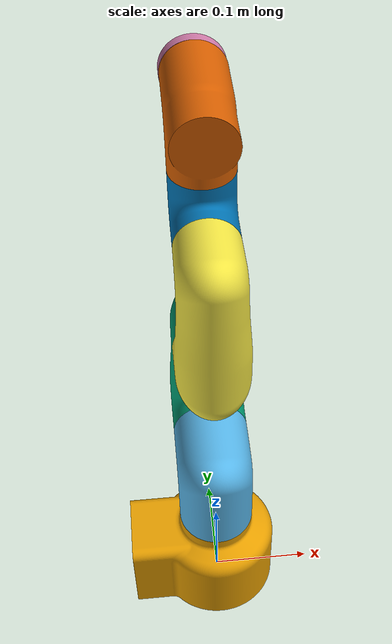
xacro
<?xml version="1.0"?>
<robot xmlns:xacro="http://www.ros.org/wiki/xacro" name="firefighter">
    <xacro:arg name="initial_positions_file" default="initial_positions.yaml" />

    <!-- Import firefighter urdf file -->
    <xacro:include filename="urdf/mycobot_320_m5_custom.urdf" />

    <!-- Import control_xacro -->
    <xacro:include filename="firefighter.ros2_control.xacro" />

    <xacro:firefighter_ros2_control name="FakeSystem" initial_positions_file="$(arg initial_positions_file)"/>

</robot>

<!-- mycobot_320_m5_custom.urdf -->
<robot  xmlns:xacro="http://www.ros.org/wiki/xacro" name="firefighter" >

<xacro:property name="width" value=".2" />

  <link name="base">
    <visual>
      <geometry>
       <mesh filename="base.stl"/>
      </geometry>
      <origin xyz="0 0 0" rpy="0 0 0"/>
    </visual>
    <collision>
      <geometry>
       <mesh filename="base.stl"/>
        </geometry>
        <origin xyz="0 0 0" rpy="0 0 0"/>
    </collision>
  </link>

  <link name="link1">
    <visual>
      <geometry>
       <mesh filename="link1.stl"/>
      </geometry>

    <origin xyz="0.0 0.0 -0.103" rpy="0 0 0"/>
    </visual>
    <collision>
     <geometry>
       <mesh filename="link1.stl"/>
      </geometry>
      <origin xyz="0.0 0.0 -0.103" rpy="0 0 0"/>
    </collision>
  </link>

  <link name="link2">
    <visual>
      <geometry>
       <mesh filename="link2.stl"/>
      </geometry>
      <origin xyz="0.0 0.0 -0.1739" rpy="0 0 0"/>
    </visual>
    <collision>
      <geometry>
       <mesh filename="link2.stl"/>
      </geometry>
      <origin xyz="0.0 0.0 -0.1739" rpy="0 0 0"/>
    </collision>
  </link>

  <link name="link3">
    <visual>
      <geometry>
       <mesh filename="link3.stl"/>
      </geometry>
      <origin xyz="0.0 0.0 -0.3089" rpy="0 0 0"/>
    </visual>
    <collision>
      <geometry>
       <mesh filename="link3.stl"/>
      </geometry>
      <origin xyz="0.0 0.0 -0.3089" rpy="0 0 0"/>
    </collision>
  </link>

  <link name="link4">
    <visual>
      <geometry>
       <mesh filename="link4.stl"/>
      </geometry>
      <origin xyz="0.0 0.0 -0.4289" rpy="0 0 0"/>
    </visual>
    <collision>
       <geometry>
       <mesh filename="link4.stl"/>
      </geometry>
      <origin xyz="0.0 0.0 -0.4289" rpy="0 0 0"/>
    </collision>
  </link>

  <link name="link5">
    <visual>
      <geometry>
       <mesh filename="link5.stl"/>
      </geometry>
      <origin xyz="0.0 -0.088779 -0.475" rpy="0 0 0"/>
    </visual>
    <collision>
      <geometry>
       <mesh filename="link5.stl"/>
      </geometry>
      <origin xyz="0.0 -0.088779 -0.475" rpy="0 0 0"/>
    </collision>
  </link>

  <link name="link6">
    <visual>
      <geometry>
       <mesh filename="link6.stl"/>
      </geometry>
      <origin xyz="0.0 -0.154279 -0.526" rpy="0 0 -1.5707"/>
    </visual>
    <collision>
      <geometry>
       <mesh filename="link6.stl"/>
      </geometry>
      <origin xyz="0.0 -0.154279 -0.526" rpy="0 0 -1.5707"/>
    </collision>
  </link>

  <joint name="joint2_to_joint1" type="revolute">
    <axis xyz="0 0 1"/>
    <limit effort = "1000.0" lower = "-2.87" upper = "2.87" velocity = "0"/>
    <parent link="base"/>
    <child link="link1"/>
    <origin xyz="0.0 0.0 0.103" rpy="0 0 0"/>
  </joint>

  <joint name="joint3_to_joint2" type="revolute">
    <axis xyz="0 -1 0"/>
    <limit effort = "1000.0" lower = "-2.879" upper = "2.879" velocity = "0"/>
    <parent link="link1"/>
    <child link="link2"/>
    <origin xyz="0 0 0.0709" rpy="0 0 0"/>
  </joint>

  <joint name="joint4_to_joint3" type="revolute">
    <axis xyz=" 0 1 0"/>
    <limit effort = "1000.0" lower = "-2.879" upper = "2.879" velocity = "0"/>
    <parent link="link2"/>
    <child link="link3"/>
    <origin xyz="0 0 0.135" rpy="0 0 0"/>
  </joint>

  <joint name="joint5_to_joint4" type="revolute">
    <axis xyz=" 0 -1 0"/>
    <limit effort = "1000.0" lower = "-2.879" upper = "2.879" velocity = "0"/>
    <parent link="link3"/>
    <child link="link4"/>
    <origin xyz="0.0 0.0 0.12" rpy="0 0 0"/>
  </joint>

  <joint name="joint6_to_joint5" type="revolute">
    <axis xyz="0 0 1"/>
    <limit effort = "1000.0" lower = "-2.879" upper = "2.879" velocity = "0"/>
    <parent link="link4"/>
    <child link="link5"/>
    <origin xyz="0 0.088779 0.0461" rpy="0 0 0"/>
  </joint>

  <joint name="joint6output_to_joint6" type="revolute">
    <axis xyz="0 1 0"/>
    <limit effort = "1000.0" lower = "-3.05" upper = "3.05" velocity = "0"/>
    <parent link="link5"/>
    <child link="link6"/>
    <origin xyz="0 0.0655 0.051" rpy="0 0 0"/>
  </joint>

</robot>
